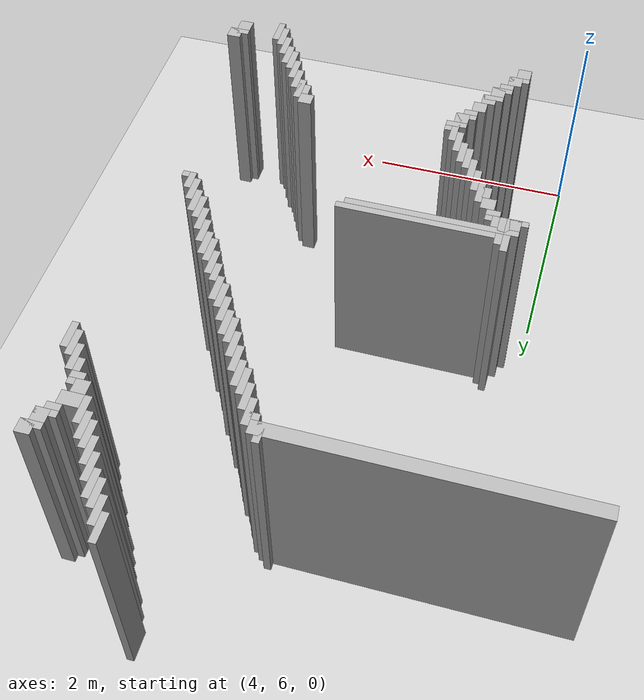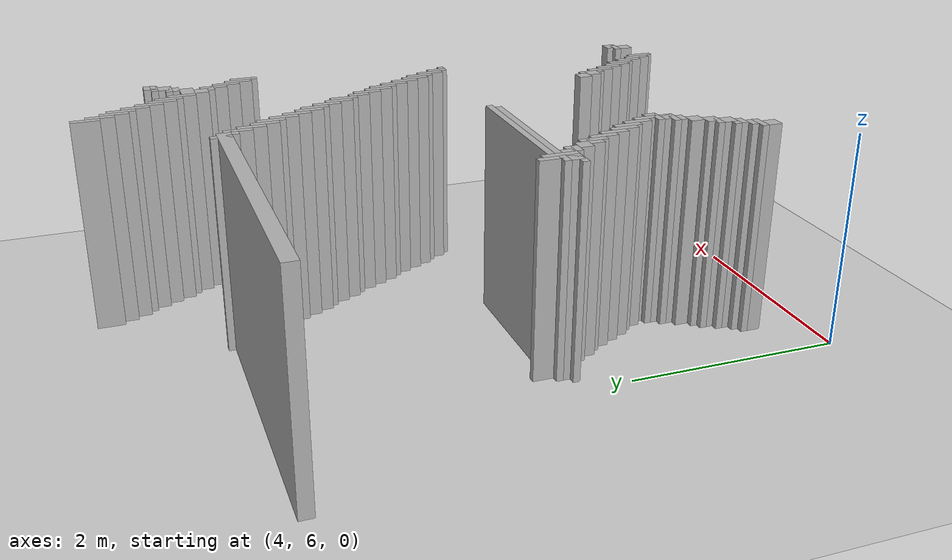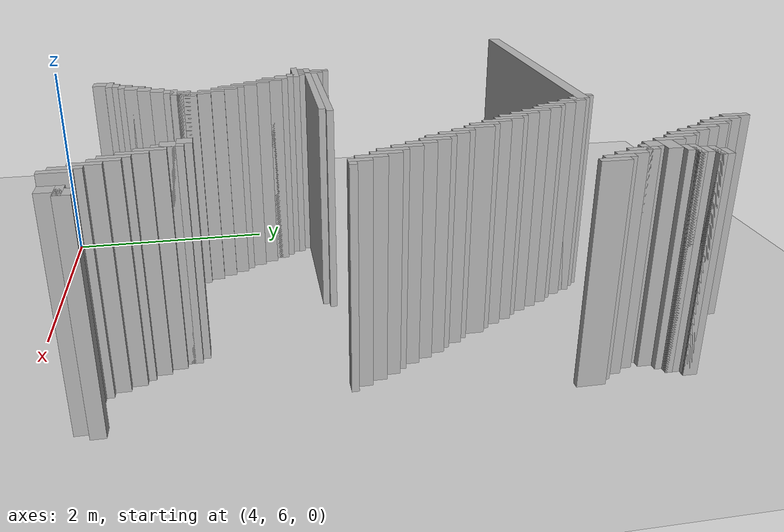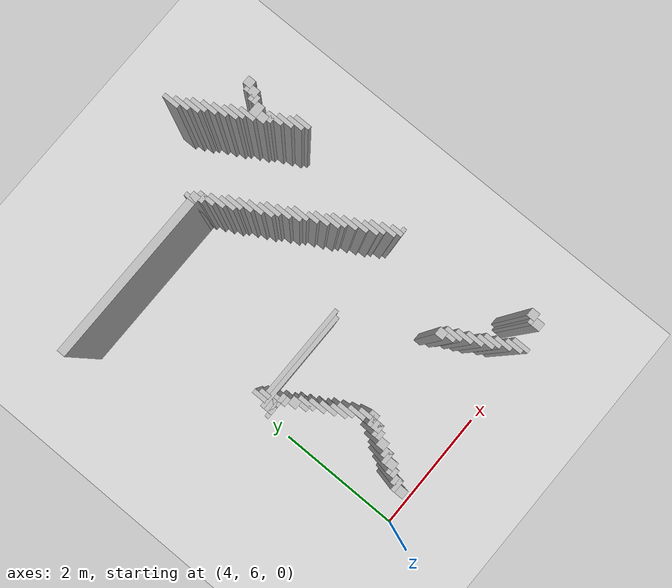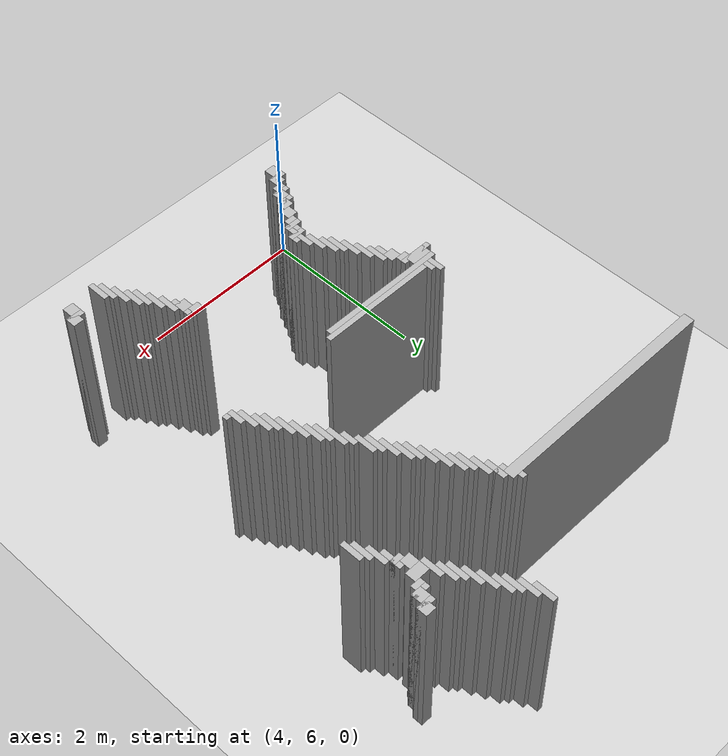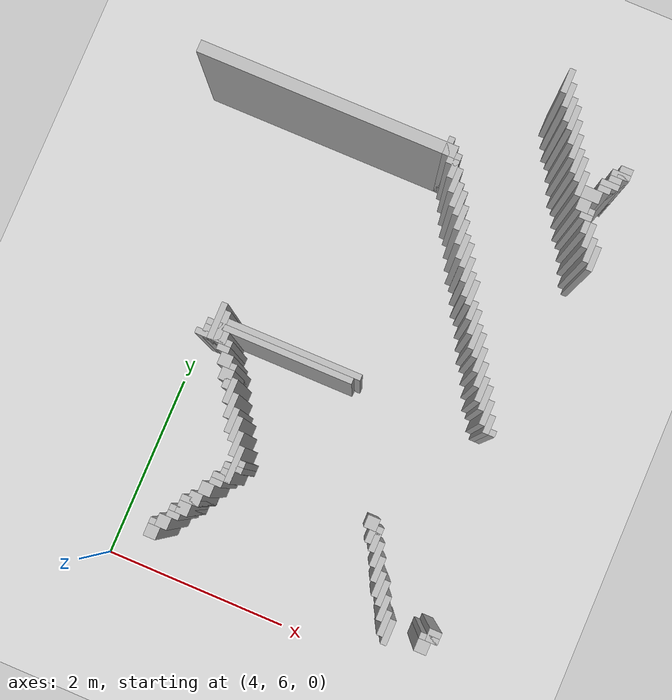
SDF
<sdf version="1.6">
 <world name="slam_world">
  <model name="ground_plane">
   <static>true</static>
   <link name="link">
    <collision name="collision">
     <geometry><plane><normal>0 0 1</normal><size>100 100</size></plane></geometry>
    </collision>
    <visual name="visual">
     <geometry><plane><normal>0 0 1</normal><size>100 100</size></plane></geometry>
     <material>
      <ambient>0.8 0.8 0.8 1</ambient>
      <diffuse>0.8 0.8 0.8 1</diffuse>
      <specular>0.8 0.8 0.8 1</specular>
     </material>
    </visual>
   </link>
  </model>
  <model name="wall_1146">
   <static>true</static>
   <pose>6.542553191489361 12.127659574468083 1.0 0 0 0</pose>
   <link name="link">
    <collision name="collision">
     <geometry><box><size>0.06382978723404255 0.2553191489361702 2.0</size></box></geometry>
    </collision>
    <visual name="visual">
     <geometry><box><size>0.06382978723404255 0.2553191489361702 2.0</size></box></geometry>
     <material><ambient>0.5 0.5 0.5 1</ambient><diffuse>0.7 0.7 0.7 1</diffuse></material>
    </visual>
   </link>
  </model>
  <model name="wall_1161">
   <static>true</static>
   <pose>6.606382978723404 11.999999999999998 1.0 0 0 0</pose>
   <link name="link">
    <collision name="collision">
     <geometry><box><size>0.06382978723404255 0.2553191489361702 2.0</size></box></geometry>
    </collision>
    <visual name="visual">
     <geometry><box><size>0.06382978723404255 0.2553191489361702 2.0</size></box></geometry>
     <material><ambient>0.5 0.5 0.5 1</ambient><diffuse>0.7 0.7 0.7 1</diffuse></material>
    </visual>
   </link>
  </model>
  <model name="wall_1171">
   <static>true</static>
   <pose>6.670212765957446 11.872340425531913 1.0 0 0 0</pose>
   <link name="link">
    <collision name="collision">
     <geometry><box><size>0.06382978723404255 0.2553191489361702 2.0</size></box></geometry>
    </collision>
    <visual name="visual">
     <geometry><box><size>0.06382978723404255 0.2553191489361702 2.0</size></box></geometry>
     <material><ambient>0.5 0.5 0.5 1</ambient><diffuse>0.7 0.7 0.7 1</diffuse></material>
    </visual>
   </link>
  </model>
  <model name="wall_1181">
   <static>true</static>
   <pose>6.734042553191489 11.808510638297872 1.0 0 0 0</pose>
   <link name="link">
    <collision name="collision">
     <geometry><box><size>0.06382978723404255 0.2553191489361702 2.0</size></box></geometry>
    </collision>
    <visual name="visual">
     <geometry><box><size>0.06382978723404255 0.2553191489361702 2.0</size></box></geometry>
     <material><ambient>0.5 0.5 0.5 1</ambient><diffuse>0.7 0.7 0.7 1</diffuse></material>
    </visual>
   </link>
  </model>
  <model name="wall_1198">
   <static>true</static>
   <pose>6.797872340425531 11.680851063829786 1.0 0 0 0</pose>
   <link name="link">
    <collision name="collision">
     <geometry><box><size>0.06382978723404255 0.2553191489361702 2.0</size></box></geometry>
    </collision>
    <visual name="visual">
     <geometry><box><size>0.06382978723404255 0.2553191489361702 2.0</size></box></geometry>
     <material><ambient>0.5 0.5 0.5 1</ambient><diffuse>0.7 0.7 0.7 1</diffuse></material>
    </visual>
   </link>
  </model>
  <model name="wall_1214">
   <static>true</static>
   <pose>6.861702127659574 11.553191489361701 1.0 0 0 0</pose>
   <link name="link">
    <collision name="collision">
     <geometry><box><size>0.06382978723404255 0.2553191489361702 2.0</size></box></geometry>
    </collision>
    <visual name="visual">
     <geometry><box><size>0.06382978723404255 0.2553191489361702 2.0</size></box></geometry>
     <material><ambient>0.5 0.5 0.5 1</ambient><diffuse>0.7 0.7 0.7 1</diffuse></material>
    </visual>
   </link>
  </model>
  <model name="wall_1224">
   <static>true</static>
   <pose>6.925531914893616 11.425531914893616 1.0 0 0 0</pose>
   <link name="link">
    <collision name="collision">
     <geometry><box><size>0.06382978723404255 0.2553191489361702 2.0</size></box></geometry>
    </collision>
    <visual name="visual">
     <geometry><box><size>0.06382978723404255 0.2553191489361702 2.0</size></box></geometry>
     <material><ambient>0.5 0.5 0.5 1</ambient><diffuse>0.7 0.7 0.7 1</diffuse></material>
    </visual>
   </link>
  </model>
  <model name="wall_1225">
   <static>true</static>
   <pose>7.404255319148936 11.489361702127658 1.0 0 0 0</pose>
   <link name="link">
    <collision name="collision">
     <geometry><box><size>0.1276595744680851 0.1276595744680851 2.0</size></box></geometry>
    </collision>
    <visual name="visual">
     <geometry><box><size>0.1276595744680851 0.1276595744680851 2.0</size></box></geometry>
     <material><ambient>0.5 0.5 0.5 1</ambient><diffuse>0.7 0.7 0.7 1</diffuse></material>
    </visual>
   </link>
  </model>
  <model name="wall_1234">
   <static>true</static>
   <pose>6.989361702127659 11.361702127659573 1.0 0 0 0</pose>
   <link name="link">
    <collision name="collision">
     <geometry><box><size>0.06382978723404255 0.2553191489361702 2.0</size></box></geometry>
    </collision>
    <visual name="visual">
     <geometry><box><size>0.06382978723404255 0.2553191489361702 2.0</size></box></geometry>
     <material><ambient>0.5 0.5 0.5 1</ambient><diffuse>0.7 0.7 0.7 1</diffuse></material>
    </visual>
   </link>
  </model>
  <model name="wall_1235">
   <static>true</static>
   <pose>7.372340425531914 11.457446808510637 1.0 0 0 0</pose>
   <link name="link">
    <collision name="collision">
     <geometry><box><size>0.19148936170212766 0.06382978723404255 2.0</size></box></geometry>
    </collision>
    <visual name="visual">
     <geometry><box><size>0.19148936170212766 0.06382978723404255 2.0</size></box></geometry>
     <material><ambient>0.5 0.5 0.5 1</ambient><diffuse>0.7 0.7 0.7 1</diffuse></material>
    </visual>
   </link>
  </model>
  <model name="wall_1244">
   <static>true</static>
   <pose>7.340425531914893 11.361702127659573 1.0 0 0 0</pose>
   <link name="link">
    <collision name="collision">
     <geometry><box><size>0.1276595744680851 0.1276595744680851 2.0</size></box></geometry>
    </collision>
    <visual name="visual">
     <geometry><box><size>0.1276595744680851 0.1276595744680851 2.0</size></box></geometry>
     <material><ambient>0.5 0.5 0.5 1</ambient><diffuse>0.7 0.7 0.7 1</diffuse></material>
    </visual>
   </link>
  </model>
  <model name="wall_1250">
   <static>true</static>
   <pose>7.053191489361701 11.234042553191488 1.0 0 0 0</pose>
   <link name="link">
    <collision name="collision">
     <geometry><box><size>0.06382978723404255 0.2553191489361702 2.0</size></box></geometry>
    </collision>
    <visual name="visual">
     <geometry><box><size>0.06382978723404255 0.2553191489361702 2.0</size></box></geometry>
     <material><ambient>0.5 0.5 0.5 1</ambient><diffuse>0.7 0.7 0.7 1</diffuse></material>
    </visual>
   </link>
  </model>
  <model name="wall_1251">
   <static>true</static>
   <pose>7.3085106382978715 11.329787234042552 1.0 0 0 0</pose>
   <link name="link">
    <collision name="collision">
     <geometry><box><size>0.19148936170212766 0.06382978723404255 2.0</size></box></geometry>
    </collision>
    <visual name="visual">
     <geometry><box><size>0.19148936170212766 0.06382978723404255 2.0</size></box></geometry>
     <material><ambient>0.5 0.5 0.5 1</ambient><diffuse>0.7 0.7 0.7 1</diffuse></material>
    </visual>
   </link>
  </model>
  <model name="wall_1260">
   <static>true</static>
   <pose>7.276595744680851 11.26595744680851 1.0 0 0 0</pose>
   <link name="link">
    <collision name="collision">
     <geometry><box><size>0.1276595744680851 0.06382978723404255 2.0</size></box></geometry>
    </collision>
    <visual name="visual">
     <geometry><box><size>0.1276595744680851 0.06382978723404255 2.0</size></box></geometry>
     <material><ambient>0.5 0.5 0.5 1</ambient><diffuse>0.7 0.7 0.7 1</diffuse></material>
    </visual>
   </link>
  </model>
  <model name="wall_1266">
   <static>true</static>
   <pose>7.180851063829786 11.170212765957446 1.0 0 0 0</pose>
   <link name="link">
    <collision name="collision">
     <geometry><box><size>0.19148936170212766 0.1276595744680851 2.0</size></box></geometry>
    </collision>
    <visual name="visual">
     <geometry><box><size>0.19148936170212766 0.1276595744680851 2.0</size></box></geometry>
     <material><ambient>0.5 0.5 0.5 1</ambient><diffuse>0.7 0.7 0.7 1</diffuse></material>
    </visual>
   </link>
  </model>
  <model name="wall_1273">
   <static>true</static>
   <pose>5.712765957446808 11.074468085106382 1.0 0 0 0</pose>
   <link name="link">
    <collision name="collision">
     <geometry><box><size>0.06382978723404255 0.19148936170212766 2.0</size></box></geometry>
    </collision>
    <visual name="visual">
     <geometry><box><size>0.06382978723404255 0.19148936170212766 2.0</size></box></geometry>
     <material><ambient>0.5 0.5 0.5 1</ambient><diffuse>0.7 0.7 0.7 1</diffuse></material>
    </visual>
   </link>
  </model>
  <model name="wall_1279">
   <static>true</static>
   <pose>4.4361702127659575 11.042553191489361 1.0 0 0 0</pose>
   <link name="link">
    <collision name="collision">
     <geometry><box><size>2.7446808510638294 0.1276595744680851 2.0</size></box></geometry>
    </collision>
    <visual name="visual">
     <geometry><box><size>2.7446808510638294 0.1276595744680851 2.0</size></box></geometry>
     <material><ambient>0.5 0.5 0.5 1</ambient><diffuse>0.7 0.7 0.7 1</diffuse></material>
    </visual>
   </link>
  </model>
  <model name="wall_1280">
   <static>true</static>
   <pose>7.148936170212766 11.042553191489361 1.0 0 0 0</pose>
   <link name="link">
    <collision name="collision">
     <geometry><box><size>0.1276595744680851 0.1276595744680851 2.0</size></box></geometry>
    </collision>
    <visual name="visual">
     <geometry><box><size>0.1276595744680851 0.1276595744680851 2.0</size></box></geometry>
     <material><ambient>0.5 0.5 0.5 1</ambient><diffuse>0.7 0.7 0.7 1</diffuse></material>
    </visual>
   </link>
  </model>
  <model name="wall_1285">
   <static>true</static>
   <pose>5.840425531914893 10.914893617021276 1.0 0 0 0</pose>
   <link name="link">
    <collision name="collision">
     <geometry><box><size>0.06382978723404255 0.2553191489361702 2.0</size></box></geometry>
    </collision>
    <visual name="visual">
     <geometry><box><size>0.06382978723404255 0.2553191489361702 2.0</size></box></geometry>
     <material><ambient>0.5 0.5 0.5 1</ambient><diffuse>0.7 0.7 0.7 1</diffuse></material>
    </visual>
   </link>
  </model>
  <model name="wall_1286">
   <static>true</static>
   <pose>7.244680851063829 10.914893617021276 1.0 0 0 0</pose>
   <link name="link">
    <collision name="collision">
     <geometry><box><size>0.06382978723404255 0.2553191489361702 2.0</size></box></geometry>
    </collision>
    <visual name="visual">
     <geometry><box><size>0.06382978723404255 0.2553191489361702 2.0</size></box></geometry>
     <material><ambient>0.5 0.5 0.5 1</ambient><diffuse>0.7 0.7 0.7 1</diffuse></material>
    </visual>
   </link>
  </model>
  <model name="wall_1291">
   <static>true</static>
   <pose>5.8085106382978715 10.946808510638297 1.0 0 0 0</pose>
   <link name="link">
    <collision name="collision">
     <geometry><box><size>0.1276595744680851 0.06382978723404255 2.0</size></box></geometry>
    </collision>
    <visual name="visual">
     <geometry><box><size>0.1276595744680851 0.06382978723404255 2.0</size></box></geometry>
     <material><ambient>0.5 0.5 0.5 1</ambient><diffuse>0.7 0.7 0.7 1</diffuse></material>
    </visual>
   </link>
  </model>
  <model name="wall_1292">
   <static>true</static>
   <pose>7.212765957446808 10.946808510638297 1.0 0 0 0</pose>
   <link name="link">
    <collision name="collision">
     <geometry><box><size>0.1276595744680851 0.06382978723404255 2.0</size></box></geometry>
    </collision>
    <visual name="visual">
     <geometry><box><size>0.1276595744680851 0.06382978723404255 2.0</size></box></geometry>
     <material><ambient>0.5 0.5 0.5 1</ambient><diffuse>0.7 0.7 0.7 1</diffuse></material>
    </visual>
   </link>
  </model>
  <model name="wall_1298">
   <static>true</static>
   <pose>5.904255319148936 10.787234042553191 1.0 0 0 0</pose>
   <link name="link">
    <collision name="collision">
     <geometry><box><size>0.06382978723404255 0.2553191489361702 2.0</size></box></geometry>
    </collision>
    <visual name="visual">
     <geometry><box><size>0.06382978723404255 0.2553191489361702 2.0</size></box></geometry>
     <material><ambient>0.5 0.5 0.5 1</ambient><diffuse>0.7 0.7 0.7 1</diffuse></material>
    </visual>
   </link>
  </model>
  <model name="wall_1299">
   <static>true</static>
   <pose>7.3085106382978715 10.787234042553191 1.0 0 0 0</pose>
   <link name="link">
    <collision name="collision">
     <geometry><box><size>0.06382978723404255 0.2553191489361702 2.0</size></box></geometry>
    </collision>
    <visual name="visual">
     <geometry><box><size>0.06382978723404255 0.2553191489361702 2.0</size></box></geometry>
     <material><ambient>0.5 0.5 0.5 1</ambient><diffuse>0.7 0.7 0.7 1</diffuse></material>
    </visual>
   </link>
  </model>
  <model name="wall_1305">
   <static>true</static>
   <pose>5.968085106382978 10.659574468085106 1.0 0 0 0</pose>
   <link name="link">
    <collision name="collision">
     <geometry><box><size>0.06382978723404255 0.2553191489361702 2.0</size></box></geometry>
    </collision>
    <visual name="visual">
     <geometry><box><size>0.06382978723404255 0.2553191489361702 2.0</size></box></geometry>
     <material><ambient>0.5 0.5 0.5 1</ambient><diffuse>0.7 0.7 0.7 1</diffuse></material>
    </visual>
   </link>
  </model>
  <model name="wall_1306">
   <static>true</static>
   <pose>7.372340425531914 10.659574468085106 1.0 0 0 0</pose>
   <link name="link">
    <collision name="collision">
     <geometry><box><size>0.06382978723404255 0.2553191489361702 2.0</size></box></geometry>
    </collision>
    <visual name="visual">
     <geometry><box><size>0.06382978723404255 0.2553191489361702 2.0</size></box></geometry>
     <material><ambient>0.5 0.5 0.5 1</ambient><diffuse>0.7 0.7 0.7 1</diffuse></material>
    </visual>
   </link>
  </model>
  <model name="wall_1312">
   <static>true</static>
   <pose>6.031914893617021 10.595744680851062 1.0 0 0 0</pose>
   <link name="link">
    <collision name="collision">
     <geometry><box><size>0.06382978723404255 0.2553191489361702 2.0</size></box></geometry>
    </collision>
    <visual name="visual">
     <geometry><box><size>0.06382978723404255 0.2553191489361702 2.0</size></box></geometry>
     <material><ambient>0.5 0.5 0.5 1</ambient><diffuse>0.7 0.7 0.7 1</diffuse></material>
    </visual>
   </link>
  </model>
  <model name="wall_1313">
   <static>true</static>
   <pose>7.436170212765957 10.595744680851062 1.0 0 0 0</pose>
   <link name="link">
    <collision name="collision">
     <geometry><box><size>0.06382978723404255 0.2553191489361702 2.0</size></box></geometry>
    </collision>
    <visual name="visual">
     <geometry><box><size>0.06382978723404255 0.2553191489361702 2.0</size></box></geometry>
     <material><ambient>0.5 0.5 0.5 1</ambient><diffuse>0.7 0.7 0.7 1</diffuse></material>
    </visual>
   </link>
  </model>
  <model name="wall_1321">
   <static>true</static>
   <pose>6.095744680851063 10.468085106382977 1.0 0 0 0</pose>
   <link name="link">
    <collision name="collision">
     <geometry><box><size>0.06382978723404255 0.2553191489361702 2.0</size></box></geometry>
    </collision>
    <visual name="visual">
     <geometry><box><size>0.06382978723404255 0.2553191489361702 2.0</size></box></geometry>
     <material><ambient>0.5 0.5 0.5 1</ambient><diffuse>0.7 0.7 0.7 1</diffuse></material>
    </visual>
   </link>
  </model>
  <model name="wall_1330">
   <static>true</static>
   <pose>6.159574468085106 10.340425531914892 1.0 0 0 0</pose>
   <link name="link">
    <collision name="collision">
     <geometry><box><size>0.06382978723404255 0.2553191489361702 2.0</size></box></geometry>
    </collision>
    <visual name="visual">
     <geometry><box><size>0.06382978723404255 0.2553191489361702 2.0</size></box></geometry>
     <material><ambient>0.5 0.5 0.5 1</ambient><diffuse>0.7 0.7 0.7 1</diffuse></material>
    </visual>
   </link>
  </model>
  <model name="wall_1337">
   <static>true</static>
   <pose>6.223404255319148 10.212765957446807 1.0 0 0 0</pose>
   <link name="link">
    <collision name="collision">
     <geometry><box><size>0.06382978723404255 0.2553191489361702 2.0</size></box></geometry>
    </collision>
    <visual name="visual">
     <geometry><box><size>0.06382978723404255 0.2553191489361702 2.0</size></box></geometry>
     <material><ambient>0.5 0.5 0.5 1</ambient><diffuse>0.7 0.7 0.7 1</diffuse></material>
    </visual>
   </link>
  </model>
  <model name="wall_1344">
   <static>true</static>
   <pose>6.287234042553191 10.148936170212766 1.0 0 0 0</pose>
   <link name="link">
    <collision name="collision">
     <geometry><box><size>0.06382978723404255 0.2553191489361702 2.0</size></box></geometry>
    </collision>
    <visual name="visual">
     <geometry><box><size>0.06382978723404255 0.2553191489361702 2.0</size></box></geometry>
     <material><ambient>0.5 0.5 0.5 1</ambient><diffuse>0.7 0.7 0.7 1</diffuse></material>
    </visual>
   </link>
  </model>
  <model name="wall_1353">
   <static>true</static>
   <pose>6.3510638297872335 10.02127659574468 1.0 0 0 0</pose>
   <link name="link">
    <collision name="collision">
     <geometry><box><size>0.06382978723404255 0.2553191489361702 2.0</size></box></geometry>
    </collision>
    <visual name="visual">
     <geometry><box><size>0.06382978723404255 0.2553191489361702 2.0</size></box></geometry>
     <material><ambient>0.5 0.5 0.5 1</ambient><diffuse>0.7 0.7 0.7 1</diffuse></material>
    </visual>
   </link>
  </model>
  <model name="wall_1361">
   <static>true</static>
   <pose>6.414893617021276 9.893617021276595 1.0 0 0 0</pose>
   <link name="link">
    <collision name="collision">
     <geometry><box><size>0.06382978723404255 0.2553191489361702 2.0</size></box></geometry>
    </collision>
    <visual name="visual">
     <geometry><box><size>0.06382978723404255 0.2553191489361702 2.0</size></box></geometry>
     <material><ambient>0.5 0.5 0.5 1</ambient><diffuse>0.7 0.7 0.7 1</diffuse></material>
    </visual>
   </link>
  </model>
  <model name="wall_1368">
   <static>true</static>
   <pose>6.478723404255319 9.829787234042552 1.0 0 0 0</pose>
   <link name="link">
    <collision name="collision">
     <geometry><box><size>0.06382978723404255 0.2553191489361702 2.0</size></box></geometry>
    </collision>
    <visual name="visual">
     <geometry><box><size>0.06382978723404255 0.2553191489361702 2.0</size></box></geometry>
     <material><ambient>0.5 0.5 0.5 1</ambient><diffuse>0.7 0.7 0.7 1</diffuse></material>
    </visual>
   </link>
  </model>
  <model name="wall_1386">
   <static>true</static>
   <pose>6.542553191489361 9.670212765957446 1.0 0 0 0</pose>
   <link name="link">
    <collision name="collision">
     <geometry><box><size>0.06382978723404255 0.19148936170212766 2.0</size></box></geometry>
    </collision>
    <visual name="visual">
     <geometry><box><size>0.06382978723404255 0.19148936170212766 2.0</size></box></geometry>
     <material><ambient>0.5 0.5 0.5 1</ambient><diffuse>0.7 0.7 0.7 1</diffuse></material>
    </visual>
   </link>
  </model>
  <model name="wall_1393">
   <static>true</static>
   <pose>6.606382978723404 9.574468085106382 1.0 0 0 0</pose>
   <link name="link">
    <collision name="collision">
     <geometry><box><size>0.06382978723404255 0.2553191489361702 2.0</size></box></geometry>
    </collision>
    <visual name="visual">
     <geometry><box><size>0.06382978723404255 0.2553191489361702 2.0</size></box></geometry>
     <material><ambient>0.5 0.5 0.5 1</ambient><diffuse>0.7 0.7 0.7 1</diffuse></material>
    </visual>
   </link>
  </model>
  <model name="wall_1401">
   <static>true</static>
   <pose>6.670212765957446 9.446808510638297 1.0 0 0 0</pose>
   <link name="link">
    <collision name="collision">
     <geometry><box><size>0.06382978723404255 0.2553191489361702 2.0</size></box></geometry>
    </collision>
    <visual name="visual">
     <geometry><box><size>0.06382978723404255 0.2553191489361702 2.0</size></box></geometry>
     <material><ambient>0.5 0.5 0.5 1</ambient><diffuse>0.7 0.7 0.7 1</diffuse></material>
    </visual>
   </link>
  </model>
  <model name="wall_1409">
   <static>true</static>
   <pose>6.734042553191489 9.382978723404255 1.0 0 0 0</pose>
   <link name="link">
    <collision name="collision">
     <geometry><box><size>0.06382978723404255 0.2553191489361702 2.0</size></box></geometry>
    </collision>
    <visual name="visual">
     <geometry><box><size>0.06382978723404255 0.2553191489361702 2.0</size></box></geometry>
     <material><ambient>0.5 0.5 0.5 1</ambient><diffuse>0.7 0.7 0.7 1</diffuse></material>
    </visual>
   </link>
  </model>
  <model name="wall_1423">
   <static>true</static>
   <pose>6.797872340425531 9.25531914893617 1.0 0 0 0</pose>
   <link name="link">
    <collision name="collision">
     <geometry><box><size>0.06382978723404255 0.2553191489361702 2.0</size></box></geometry>
    </collision>
    <visual name="visual">
     <geometry><box><size>0.06382978723404255 0.2553191489361702 2.0</size></box></geometry>
     <material><ambient>0.5 0.5 0.5 1</ambient><diffuse>0.7 0.7 0.7 1</diffuse></material>
    </visual>
   </link>
  </model>
  <model name="wall_1436">
   <static>true</static>
   <pose>6.861702127659574 9.127659574468085 1.0 0 0 0</pose>
   <link name="link">
    <collision name="collision">
     <geometry><box><size>0.06382978723404255 0.2553191489361702 2.0</size></box></geometry>
    </collision>
    <visual name="visual">
     <geometry><box><size>0.06382978723404255 0.2553191489361702 2.0</size></box></geometry>
     <material><ambient>0.5 0.5 0.5 1</ambient><diffuse>0.7 0.7 0.7 1</diffuse></material>
    </visual>
   </link>
  </model>
  <model name="wall_1444">
   <static>true</static>
   <pose>6.925531914893616 9.0 1.0 0 0 0</pose>
   <link name="link">
    <collision name="collision">
     <geometry><box><size>0.06382978723404255 0.2553191489361702 2.0</size></box></geometry>
    </collision>
    <visual name="visual">
     <geometry><box><size>0.06382978723404255 0.2553191489361702 2.0</size></box></geometry>
     <material><ambient>0.5 0.5 0.5 1</ambient><diffuse>0.7 0.7 0.7 1</diffuse></material>
    </visual>
   </link>
  </model>
  <model name="wall_1452">
   <static>true</static>
   <pose>6.989361702127659 8.936170212765957 1.0 0 0 0</pose>
   <link name="link">
    <collision name="collision">
     <geometry><box><size>0.06382978723404255 0.2553191489361702 2.0</size></box></geometry>
    </collision>
    <visual name="visual">
     <geometry><box><size>0.06382978723404255 0.2553191489361702 2.0</size></box></geometry>
     <material><ambient>0.5 0.5 0.5 1</ambient><diffuse>0.7 0.7 0.7 1</diffuse></material>
    </visual>
   </link>
  </model>
  <model name="wall_1465">
   <static>true</static>
   <pose>7.053191489361701 8.808510638297872 1.0 0 0 0</pose>
   <link name="link">
    <collision name="collision">
     <geometry><box><size>0.06382978723404255 0.2553191489361702 2.0</size></box></geometry>
    </collision>
    <visual name="visual">
     <geometry><box><size>0.06382978723404255 0.2553191489361702 2.0</size></box></geometry>
     <material><ambient>0.5 0.5 0.5 1</ambient><diffuse>0.7 0.7 0.7 1</diffuse></material>
    </visual>
   </link>
  </model>
  <model name="wall_1477">
   <static>true</static>
   <pose>4.308510638297872 8.617021276595745 1.0 0 0 0</pose>
   <link name="link">
    <collision name="collision">
     <geometry><box><size>0.06382978723404255 0.3829787234042553 2.0</size></box></geometry>
    </collision>
    <visual name="visual">
     <geometry><box><size>0.06382978723404255 0.3829787234042553 2.0</size></box></geometry>
     <material><ambient>0.5 0.5 0.5 1</ambient><diffuse>0.7 0.7 0.7 1</diffuse></material>
    </visual>
   </link>
  </model>
  <model name="wall_1478">
   <static>true</static>
   <pose>7.117021276595744 8.712765957446807 1.0 0 0 0</pose>
   <link name="link">
    <collision name="collision">
     <geometry><box><size>0.06382978723404255 0.19148936170212766 2.0</size></box></geometry>
    </collision>
    <visual name="visual">
     <geometry><box><size>0.06382978723404255 0.19148936170212766 2.0</size></box></geometry>
     <material><ambient>0.5 0.5 0.5 1</ambient><diffuse>0.7 0.7 0.7 1</diffuse></material>
    </visual>
   </link>
  </model>
  <model name="wall_1483">
   <static>true</static>
   <pose>4.372340425531915 8.585106382978722 1.0 0 0 0</pose>
   <link name="link">
    <collision name="collision">
     <geometry><box><size>0.06382978723404255 0.3191489361702127 2.0</size></box></geometry>
    </collision>
    <visual name="visual">
     <geometry><box><size>0.06382978723404255 0.3191489361702127 2.0</size></box></geometry>
     <material><ambient>0.5 0.5 0.5 1</ambient><diffuse>0.7 0.7 0.7 1</diffuse></material>
    </visual>
   </link>
  </model>
  <model name="wall_1490">
   <static>true</static>
   <pose>5.106382978723404 8.648936170212766 1.0 0 0 0</pose>
   <link name="link">
    <collision name="collision">
     <geometry><box><size>1.404255319148936 0.06382978723404255 2.0</size></box></geometry>
    </collision>
    <visual name="visual">
     <geometry><box><size>1.404255319148936 0.06382978723404255 2.0</size></box></geometry>
     <material><ambient>0.5 0.5 0.5 1</ambient><diffuse>0.7 0.7 0.7 1</diffuse></material>
    </visual>
   </link>
  </model>
  <model name="wall_1491">
   <static>true</static>
   <pose>7.180851063829786 8.648936170212766 1.0 0 0 0</pose>
   <link name="link">
    <collision name="collision">
     <geometry><box><size>0.06382978723404255 0.06382978723404255 2.0</size></box></geometry>
    </collision>
    <visual name="visual">
     <geometry><box><size>0.06382978723404255 0.06382978723404255 2.0</size></box></geometry>
     <material><ambient>0.5 0.5 0.5 1</ambient><diffuse>0.7 0.7 0.7 1</diffuse></material>
    </visual>
   </link>
  </model>
  <model name="wall_1495">
   <static>true</static>
   <pose>4.978723404255319 8.585106382978722 1.0 0 0 0</pose>
   <link name="link">
    <collision name="collision">
     <geometry><box><size>1.5319148936170213 0.06382978723404255 2.0</size></box></geometry>
    </collision>
    <visual name="visual">
     <geometry><box><size>1.5319148936170213 0.06382978723404255 2.0</size></box></geometry>
     <material><ambient>0.5 0.5 0.5 1</ambient><diffuse>0.7 0.7 0.7 1</diffuse></material>
    </visual>
   </link>
  </model>
  <model name="wall_1499">
   <static>true</static>
   <pose>4.340425531914893 8.48936170212766 1.0 0 0 0</pose>
   <link name="link">
    <collision name="collision">
     <geometry><box><size>0.2553191489361702 0.1276595744680851 2.0</size></box></geometry>
    </collision>
    <visual name="visual">
     <geometry><box><size>0.2553191489361702 0.1276595744680851 2.0</size></box></geometry>
     <material><ambient>0.5 0.5 0.5 1</ambient><diffuse>0.7 0.7 0.7 1</diffuse></material>
    </visual>
   </link>
  </model>
  <model name="wall_1503">
   <static>true</static>
   <pose>4.340425531914893 8.457446808510637 1.0 0 0 0</pose>
   <link name="link">
    <collision name="collision">
     <geometry><box><size>0.3829787234042553 0.06382978723404255 2.0</size></box></geometry>
    </collision>
    <visual name="visual">
     <geometry><box><size>0.3829787234042553 0.06382978723404255 2.0</size></box></geometry>
     <material><ambient>0.5 0.5 0.5 1</ambient><diffuse>0.7 0.7 0.7 1</diffuse></material>
    </visual>
   </link>
  </model>
  <model name="wall_1507">
   <static>true</static>
   <pose>4.468085106382978 8.393617021276595 1.0 0 0 0</pose>
   <link name="link">
    <collision name="collision">
     <geometry><box><size>0.1276595744680851 0.06382978723404255 2.0</size></box></geometry>
    </collision>
    <visual name="visual">
     <geometry><box><size>0.1276595744680851 0.06382978723404255 2.0</size></box></geometry>
     <material><ambient>0.5 0.5 0.5 1</ambient><diffuse>0.7 0.7 0.7 1</diffuse></material>
    </visual>
   </link>
  </model>
  <model name="wall_1511">
   <static>true</static>
   <pose>4.531914893617021 8.297872340425531 1.0 0 0 0</pose>
   <link name="link">
    <collision name="collision">
     <geometry><box><size>0.1276595744680851 0.1276595744680851 2.0</size></box></geometry>
    </collision>
    <visual name="visual">
     <geometry><box><size>0.1276595744680851 0.1276595744680851 2.0</size></box></geometry>
     <material><ambient>0.5 0.5 0.5 1</ambient><diffuse>0.7 0.7 0.7 1</diffuse></material>
    </visual>
   </link>
  </model>
  <model name="wall_1516">
   <static>true</static>
   <pose>4.627659574468085 8.170212765957446 1.0 0 0 0</pose>
   <link name="link">
    <collision name="collision">
     <geometry><box><size>0.06382978723404255 0.2553191489361702 2.0</size></box></geometry>
    </collision>
    <visual name="visual">
     <geometry><box><size>0.06382978723404255 0.2553191489361702 2.0</size></box></geometry>
     <material><ambient>0.5 0.5 0.5 1</ambient><diffuse>0.7 0.7 0.7 1</diffuse></material>
    </visual>
   </link>
  </model>
  <model name="wall_1520">
   <static>true</static>
   <pose>4.595744680851063 8.170212765957446 1.0 0 0 0</pose>
   <link name="link">
    <collision name="collision">
     <geometry><box><size>0.1276595744680851 0.1276595744680851 2.0</size></box></geometry>
    </collision>
    <visual name="visual">
     <geometry><box><size>0.1276595744680851 0.1276595744680851 2.0</size></box></geometry>
     <material><ambient>0.5 0.5 0.5 1</ambient><diffuse>0.7 0.7 0.7 1</diffuse></material>
    </visual>
   </link>
  </model>
  <model name="wall_1523">
   <static>true</static>
   <pose>4.691489361702128 8.042553191489361 1.0 0 0 0</pose>
   <link name="link">
    <collision name="collision">
     <geometry><box><size>0.06382978723404255 0.2553191489361702 2.0</size></box></geometry>
    </collision>
    <visual name="visual">
     <geometry><box><size>0.06382978723404255 0.2553191489361702 2.0</size></box></geometry>
     <material><ambient>0.5 0.5 0.5 1</ambient><diffuse>0.7 0.7 0.7 1</diffuse></material>
    </visual>
   </link>
  </model>
  <model name="wall_1529">
   <static>true</static>
   <pose>4.75531914893617 7.914893617021276 1.0 0 0 0</pose>
   <link name="link">
    <collision name="collision">
     <geometry><box><size>0.06382978723404255 0.2553191489361702 2.0</size></box></geometry>
    </collision>
    <visual name="visual">
     <geometry><box><size>0.06382978723404255 0.2553191489361702 2.0</size></box></geometry>
     <material><ambient>0.5 0.5 0.5 1</ambient><diffuse>0.7 0.7 0.7 1</diffuse></material>
    </visual>
   </link>
  </model>
  <model name="wall_1534">
   <static>true</static>
   <pose>4.819148936170213 7.787234042553191 1.0 0 0 0</pose>
   <link name="link">
    <collision name="collision">
     <geometry><box><size>0.06382978723404255 0.2553191489361702 2.0</size></box></geometry>
    </collision>
    <visual name="visual">
     <geometry><box><size>0.06382978723404255 0.2553191489361702 2.0</size></box></geometry>
     <material><ambient>0.5 0.5 0.5 1</ambient><diffuse>0.7 0.7 0.7 1</diffuse></material>
    </visual>
   </link>
  </model>
  <model name="wall_1539">
   <static>true</static>
   <pose>4.882978723404255 7.723404255319148 1.0 0 0 0</pose>
   <link name="link">
    <collision name="collision">
     <geometry><box><size>0.06382978723404255 0.2553191489361702 2.0</size></box></geometry>
    </collision>
    <visual name="visual">
     <geometry><box><size>0.06382978723404255 0.2553191489361702 2.0</size></box></geometry>
     <material><ambient>0.5 0.5 0.5 1</ambient><diffuse>0.7 0.7 0.7 1</diffuse></material>
    </visual>
   </link>
  </model>
  <model name="wall_1545">
   <static>true</static>
   <pose>4.946808510638298 7.595744680851063 1.0 0 0 0</pose>
   <link name="link">
    <collision name="collision">
     <geometry><box><size>0.06382978723404255 0.2553191489361702 2.0</size></box></geometry>
    </collision>
    <visual name="visual">
     <geometry><box><size>0.06382978723404255 0.2553191489361702 2.0</size></box></geometry>
     <material><ambient>0.5 0.5 0.5 1</ambient><diffuse>0.7 0.7 0.7 1</diffuse></material>
    </visual>
   </link>
  </model>
  <model name="wall_1551">
   <static>true</static>
   <pose>5.01063829787234 7.404255319148936 1.0 0 0 0</pose>
   <link name="link">
    <collision name="collision">
     <geometry><box><size>0.06382978723404255 0.3829787234042553 2.0</size></box></geometry>
    </collision>
    <visual name="visual">
     <geometry><box><size>0.06382978723404255 0.3829787234042553 2.0</size></box></geometry>
     <material><ambient>0.5 0.5 0.5 1</ambient><diffuse>0.7 0.7 0.7 1</diffuse></material>
    </visual>
   </link>
  </model>
  <model name="wall_1558">
   <static>true</static>
   <pose>5.074468085106383 7.404255319148936 1.0 0 0 0</pose>
   <link name="link">
    <collision name="collision">
     <geometry><box><size>0.06382978723404255 0.1276595744680851 2.0</size></box></geometry>
    </collision>
    <visual name="visual">
     <geometry><box><size>0.06382978723404255 0.1276595744680851 2.0</size></box></geometry>
     <material><ambient>0.5 0.5 0.5 1</ambient><diffuse>0.7 0.7 0.7 1</diffuse></material>
    </visual>
   </link>
  </model>
  <model name="wall_1559">
   <static>true</static>
   <pose>6.446808510638298 7.404255319148936 1.0 0 0 0</pose>
   <link name="link">
    <collision name="collision">
     <geometry><box><size>0.1276595744680851 0.1276595744680851 2.0</size></box></geometry>
    </collision>
    <visual name="visual">
     <geometry><box><size>0.1276595744680851 0.1276595744680851 2.0</size></box></geometry>
     <material><ambient>0.5 0.5 0.5 1</ambient><diffuse>0.7 0.7 0.7 1</diffuse></material>
    </visual>
   </link>
  </model>
  <model name="wall_1566">
   <static>true</static>
   <pose>5.01063829787234 7.372340425531914 1.0 0 0 0</pose>
   <link name="link">
    <collision name="collision">
     <geometry><box><size>0.19148936170212766 0.06382978723404255 2.0</size></box></geometry>
    </collision>
    <visual name="visual">
     <geometry><box><size>0.19148936170212766 0.06382978723404255 2.0</size></box></geometry>
     <material><ambient>0.5 0.5 0.5 1</ambient><diffuse>0.7 0.7 0.7 1</diffuse></material>
    </visual>
   </link>
  </model>
  <model name="wall_1567">
   <static>true</static>
   <pose>6.542553191489361 7.276595744680851 1.0 0 0 0</pose>
   <link name="link">
    <collision name="collision">
     <geometry><box><size>0.06382978723404255 0.2553191489361702 2.0</size></box></geometry>
    </collision>
    <visual name="visual">
     <geometry><box><size>0.06382978723404255 0.2553191489361702 2.0</size></box></geometry>
     <material><ambient>0.5 0.5 0.5 1</ambient><diffuse>0.7 0.7 0.7 1</diffuse></material>
    </visual>
   </link>
  </model>
  <model name="wall_1574">
   <static>true</static>
   <pose>4.978723404255319 7.276595744680851 1.0 0 0 0</pose>
   <link name="link">
    <collision name="collision">
     <geometry><box><size>0.1276595744680851 0.1276595744680851 2.0</size></box></geometry>
    </collision>
    <visual name="visual">
     <geometry><box><size>0.1276595744680851 0.1276595744680851 2.0</size></box></geometry>
     <material><ambient>0.5 0.5 0.5 1</ambient><diffuse>0.7 0.7 0.7 1</diffuse></material>
    </visual>
   </link>
  </model>
  <model name="wall_1575">
   <static>true</static>
   <pose>6.51063829787234 7.276595744680851 1.0 0 0 0</pose>
   <link name="link">
    <collision name="collision">
     <geometry><box><size>0.1276595744680851 0.1276595744680851 2.0</size></box></geometry>
    </collision>
    <visual name="visual">
     <geometry><box><size>0.1276595744680851 0.1276595744680851 2.0</size></box></geometry>
     <material><ambient>0.5 0.5 0.5 1</ambient><diffuse>0.7 0.7 0.7 1</diffuse></material>
    </visual>
   </link>
  </model>
  <model name="wall_1583">
   <static>true</static>
   <pose>4.946808510638298 7.244680851063829 1.0 0 0 0</pose>
   <link name="link">
    <collision name="collision">
     <geometry><box><size>0.19148936170212766 0.06382978723404255 2.0</size></box></geometry>
    </collision>
    <visual name="visual">
     <geometry><box><size>0.19148936170212766 0.06382978723404255 2.0</size></box></geometry>
     <material><ambient>0.5 0.5 0.5 1</ambient><diffuse>0.7 0.7 0.7 1</diffuse></material>
    </visual>
   </link>
  </model>
  <model name="wall_1584">
   <static>true</static>
   <pose>6.606382978723404 7.148936170212766 1.0 0 0 0</pose>
   <link name="link">
    <collision name="collision">
     <geometry><box><size>0.06382978723404255 0.2553191489361702 2.0</size></box></geometry>
    </collision>
    <visual name="visual">
     <geometry><box><size>0.06382978723404255 0.2553191489361702 2.0</size></box></geometry>
     <material><ambient>0.5 0.5 0.5 1</ambient><diffuse>0.7 0.7 0.7 1</diffuse></material>
    </visual>
   </link>
  </model>
  <model name="wall_1592">
   <static>true</static>
   <pose>4.914893617021276 7.180851063829786 1.0 0 0 0</pose>
   <link name="link">
    <collision name="collision">
     <geometry><box><size>0.1276595744680851 0.06382978723404255 2.0</size></box></geometry>
    </collision>
    <visual name="visual">
     <geometry><box><size>0.1276595744680851 0.06382978723404255 2.0</size></box></geometry>
     <material><ambient>0.5 0.5 0.5 1</ambient><diffuse>0.7 0.7 0.7 1</diffuse></material>
    </visual>
   </link>
  </model>
  <model name="wall_1599">
   <static>true</static>
   <pose>4.8510638297872335 7.085106382978723 1.0 0 0 0</pose>
   <link name="link">
    <collision name="collision">
     <geometry><box><size>0.1276595744680851 0.1276595744680851 2.0</size></box></geometry>
    </collision>
    <visual name="visual">
     <geometry><box><size>0.1276595744680851 0.1276595744680851 2.0</size></box></geometry>
     <material><ambient>0.5 0.5 0.5 1</ambient><diffuse>0.7 0.7 0.7 1</diffuse></material>
    </visual>
   </link>
  </model>
  <model name="wall_1600">
   <static>true</static>
   <pose>6.670212765957446 7.0212765957446805 1.0 0 0 0</pose>
   <link name="link">
    <collision name="collision">
     <geometry><box><size>0.06382978723404255 0.2553191489361702 2.0</size></box></geometry>
    </collision>
    <visual name="visual">
     <geometry><box><size>0.06382978723404255 0.2553191489361702 2.0</size></box></geometry>
     <material><ambient>0.5 0.5 0.5 1</ambient><diffuse>0.7 0.7 0.7 1</diffuse></material>
    </visual>
   </link>
  </model>
  <model name="wall_1608">
   <static>true</static>
   <pose>4.787234042553191 6.957446808510638 1.0 0 0 0</pose>
   <link name="link">
    <collision name="collision">
     <geometry><box><size>0.1276595744680851 0.1276595744680851 2.0</size></box></geometry>
    </collision>
    <visual name="visual">
     <geometry><box><size>0.1276595744680851 0.1276595744680851 2.0</size></box></geometry>
     <material><ambient>0.5 0.5 0.5 1</ambient><diffuse>0.7 0.7 0.7 1</diffuse></material>
    </visual>
   </link>
  </model>
  <model name="wall_1609">
   <static>true</static>
   <pose>6.734042553191489 6.8936170212765955 1.0 0 0 0</pose>
   <link name="link">
    <collision name="collision">
     <geometry><box><size>0.06382978723404255 0.2553191489361702 2.0</size></box></geometry>
    </collision>
    <visual name="visual">
     <geometry><box><size>0.06382978723404255 0.2553191489361702 2.0</size></box></geometry>
     <material><ambient>0.5 0.5 0.5 1</ambient><diffuse>0.7 0.7 0.7 1</diffuse></material>
    </visual>
   </link>
  </model>
  <model name="wall_1617">
   <static>true</static>
   <pose>4.75531914893617 6.925531914893616 1.0 0 0 0</pose>
   <link name="link">
    <collision name="collision">
     <geometry><box><size>0.19148936170212766 0.06382978723404255 2.0</size></box></geometry>
    </collision>
    <visual name="visual">
     <geometry><box><size>0.19148936170212766 0.06382978723404255 2.0</size></box></geometry>
     <material><ambient>0.5 0.5 0.5 1</ambient><diffuse>0.7 0.7 0.7 1</diffuse></material>
    </visual>
   </link>
  </model>
  <model name="wall_1618">
   <static>true</static>
   <pose>6.797872340425531 6.829787234042553 1.0 0 0 0</pose>
   <link name="link">
    <collision name="collision">
     <geometry><box><size>0.06382978723404255 0.2553191489361702 2.0</size></box></geometry>
    </collision>
    <visual name="visual">
     <geometry><box><size>0.06382978723404255 0.2553191489361702 2.0</size></box></geometry>
     <material><ambient>0.5 0.5 0.5 1</ambient><diffuse>0.7 0.7 0.7 1</diffuse></material>
    </visual>
   </link>
  </model>
  <model name="wall_1626">
   <static>true</static>
   <pose>4.723404255319148 6.829787234042553 1.0 0 0 0</pose>
   <link name="link">
    <collision name="collision">
     <geometry><box><size>0.1276595744680851 0.1276595744680851 2.0</size></box></geometry>
    </collision>
    <visual name="visual">
     <geometry><box><size>0.1276595744680851 0.1276595744680851 2.0</size></box></geometry>
     <material><ambient>0.5 0.5 0.5 1</ambient><diffuse>0.7 0.7 0.7 1</diffuse></material>
    </visual>
   </link>
  </model>
  <model name="wall_1633">
   <static>true</static>
   <pose>4.691489361702128 6.797872340425531 1.0 0 0 0</pose>
   <link name="link">
    <collision name="collision">
     <geometry><box><size>0.19148936170212766 0.06382978723404255 2.0</size></box></geometry>
    </collision>
    <visual name="visual">
     <geometry><box><size>0.19148936170212766 0.06382978723404255 2.0</size></box></geometry>
     <material><ambient>0.5 0.5 0.5 1</ambient><diffuse>0.7 0.7 0.7 1</diffuse></material>
    </visual>
   </link>
  </model>
  <model name="wall_1634">
   <static>true</static>
   <pose>6.861702127659574 6.702127659574468 1.0 0 0 0</pose>
   <link name="link">
    <collision name="collision">
     <geometry><box><size>0.06382978723404255 0.2553191489361702 2.0</size></box></geometry>
    </collision>
    <visual name="visual">
     <geometry><box><size>0.06382978723404255 0.2553191489361702 2.0</size></box></geometry>
     <material><ambient>0.5 0.5 0.5 1</ambient><diffuse>0.7 0.7 0.7 1</diffuse></material>
    </visual>
   </link>
  </model>
  <model name="wall_1642">
   <static>true</static>
   <pose>4.659574468085106 6.734042553191489 1.0 0 0 0</pose>
   <link name="link">
    <collision name="collision">
     <geometry><box><size>0.1276595744680851 0.06382978723404255 2.0</size></box></geometry>
    </collision>
    <visual name="visual">
     <geometry><box><size>0.1276595744680851 0.06382978723404255 2.0</size></box></geometry>
     <material><ambient>0.5 0.5 0.5 1</ambient><diffuse>0.7 0.7 0.7 1</diffuse></material>
    </visual>
   </link>
  </model>
  <model name="wall_1649">
   <static>true</static>
   <pose>4.595744680851063 6.638297872340425 1.0 0 0 0</pose>
   <link name="link">
    <collision name="collision">
     <geometry><box><size>0.1276595744680851 0.1276595744680851 2.0</size></box></geometry>
    </collision>
    <visual name="visual">
     <geometry><box><size>0.1276595744680851 0.1276595744680851 2.0</size></box></geometry>
     <material><ambient>0.5 0.5 0.5 1</ambient><diffuse>0.7 0.7 0.7 1</diffuse></material>
    </visual>
   </link>
  </model>
  <model name="wall_1650">
   <static>true</static>
   <pose>6.925531914893616 6.574468085106383 1.0 0 0 0</pose>
   <link name="link">
    <collision name="collision">
     <geometry><box><size>0.06382978723404255 0.2553191489361702 2.0</size></box></geometry>
    </collision>
    <visual name="visual">
     <geometry><box><size>0.06382978723404255 0.2553191489361702 2.0</size></box></geometry>
     <material><ambient>0.5 0.5 0.5 1</ambient><diffuse>0.7 0.7 0.7 1</diffuse></material>
    </visual>
   </link>
  </model>
  <model name="wall_1651">
   <static>true</static>
   <pose>7.404255319148936 6.638297872340425 1.0 0 0 0</pose>
   <link name="link">
    <collision name="collision">
     <geometry><box><size>0.1276595744680851 0.1276595744680851 2.0</size></box></geometry>
    </collision>
    <visual name="visual">
     <geometry><box><size>0.1276595744680851 0.1276595744680851 2.0</size></box></geometry>
     <material><ambient>0.5 0.5 0.5 1</ambient><diffuse>0.7 0.7 0.7 1</diffuse></material>
    </visual>
   </link>
  </model>
  <model name="wall_1658">
   <static>true</static>
   <pose>4.5638297872340425 6.606382978723404 1.0 0 0 0</pose>
   <link name="link">
    <collision name="collision">
     <geometry><box><size>0.19148936170212766 0.06382978723404255 2.0</size></box></geometry>
    </collision>
    <visual name="visual">
     <geometry><box><size>0.19148936170212766 0.06382978723404255 2.0</size></box></geometry>
     <material><ambient>0.5 0.5 0.5 1</ambient><diffuse>0.7 0.7 0.7 1</diffuse></material>
    </visual>
   </link>
  </model>
  <model name="wall_1659">
   <static>true</static>
   <pose>6.989361702127659 6.51063829787234 1.0 0 0 0</pose>
   <link name="link">
    <collision name="collision">
     <geometry><box><size>0.06382978723404255 0.2553191489361702 2.0</size></box></geometry>
    </collision>
    <visual name="visual">
     <geometry><box><size>0.06382978723404255 0.2553191489361702 2.0</size></box></geometry>
     <material><ambient>0.5 0.5 0.5 1</ambient><diffuse>0.7 0.7 0.7 1</diffuse></material>
    </visual>
   </link>
  </model>
  <model name="wall_1660">
   <static>true</static>
   <pose>7.372340425531914 6.606382978723404 1.0 0 0 0</pose>
   <link name="link">
    <collision name="collision">
     <geometry><box><size>0.19148936170212766 0.06382978723404255 2.0</size></box></geometry>
    </collision>
    <visual name="visual">
     <geometry><box><size>0.19148936170212766 0.06382978723404255 2.0</size></box></geometry>
     <material><ambient>0.5 0.5 0.5 1</ambient><diffuse>0.7 0.7 0.7 1</diffuse></material>
    </visual>
   </link>
  </model>
  <model name="wall_1667">
   <static>true</static>
   <pose>4.531914893617021 6.51063829787234 1.0 0 0 0</pose>
   <link name="link">
    <collision name="collision">
     <geometry><box><size>0.1276595744680851 0.1276595744680851 2.0</size></box></geometry>
    </collision>
    <visual name="visual">
     <geometry><box><size>0.1276595744680851 0.1276595744680851 2.0</size></box></geometry>
     <material><ambient>0.5 0.5 0.5 1</ambient><diffuse>0.7 0.7 0.7 1</diffuse></material>
    </visual>
   </link>
  </model>
  <model name="wall_1668">
   <static>true</static>
   <pose>7.340425531914893 6.51063829787234 1.0 0 0 0</pose>
   <link name="link">
    <collision name="collision">
     <geometry><box><size>0.1276595744680851 0.1276595744680851 2.0</size></box></geometry>
    </collision>
    <visual name="visual">
     <geometry><box><size>0.1276595744680851 0.1276595744680851 2.0</size></box></geometry>
     <material><ambient>0.5 0.5 0.5 1</ambient><diffuse>0.7 0.7 0.7 1</diffuse></material>
    </visual>
   </link>
  </model>
 </world>
</sdf>
